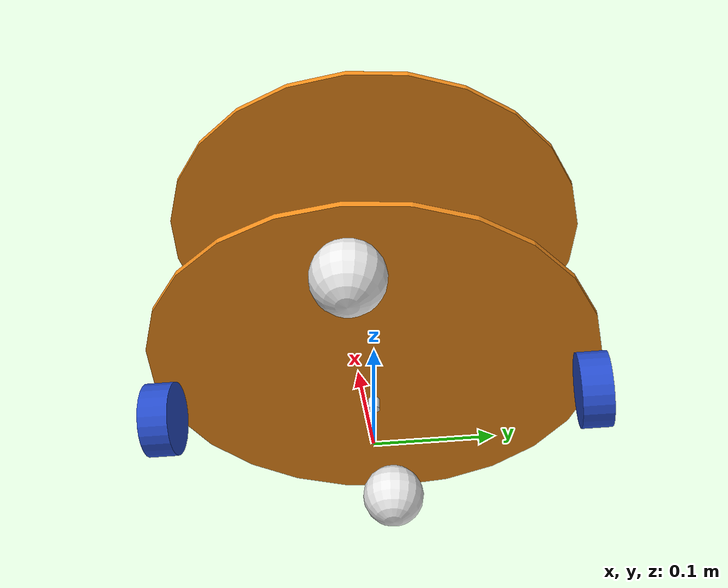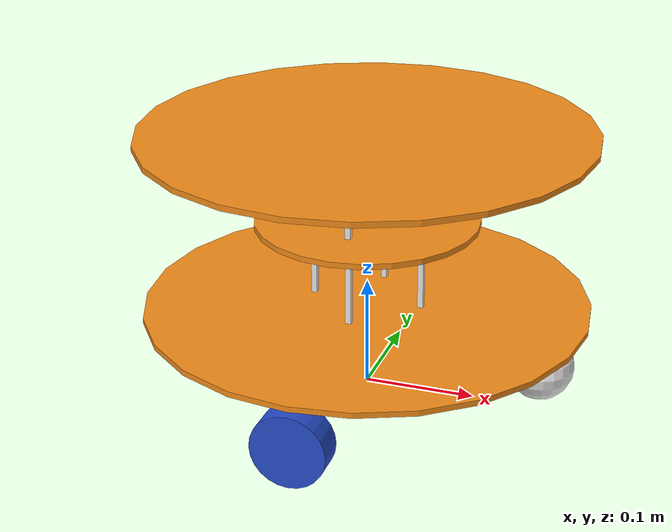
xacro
<?xml version="1.0"?>
<robot xmlns:xacro="http://www.ros.org/wiki/xacro" >

    <xacro:property name="wheel_radius" value="0.0325"/>
    <xacro:property name="wheel_thickness" value="0.026"/>
    <xacro:property name="wheel_mass" value="0.10"/>

    <xacro:property name="wheel_offset_x" value="0"/>
    <xacro:property name="wheel_offset_y" value="0.187"/>
    <xacro:property name="wheel_offset_z" value="0.04"/>

    <xacro:property name="caster_wheel_radius" value="0.030"/>
    <xacro:property name="caster_wheel_mass" value="0.05"/>
    <xacro:property name="caster_wheel_offset_x" value="0.16"/>
    <xacro:property name="caster_wheel_offset_z" value="-${wheel_offset_z - wheel_radius + caster_wheel_radius}"/>

    <!-- base link-->
    <link name="base_link">
    </link>
    <!-- base link-->

    <!-- BASE_FOOTPRINT LINK -->

    <joint name="base_footprint_joint" type="fixed">
        <parent link="base_link"/>
        <child link="base_footprint"/>
        <origin xyz="0 0 0" rpy="0 0 0"/>
    </joint>

    <link name="base_footprint">
    </link>

    <xacro:include filename="body_components/chassis.xacro" />
    <xacro:include filename="body_components/supports.xacro" />
    <xacro:include filename="body_components/wheels.xacro" />

</robot>

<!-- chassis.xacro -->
<robot xmlns:xacro="http://www.ros.org/wiki/xacro" >

    <xacro:property name="plate_radius" value="0.20"/>

    <joint name="temp_joint" type="fixed">
        <parent link="base_link"/>
        <child link="temp"/>
        <origin xyz="0 0 ${wheel_offset_z}"/>
    </joint>

    <link name="temp" >
        <visual>
            <origin xyz="0 0 0"/>
            <geometry>
                <cylinder radius="0.005" length="0.01"/>
            </geometry>
            <material name="white"/>
        </visual>

        <collision>
            <origin xyz="0 0 0"/>
            <geometry>
                <cylinder radius="0.005" length="0.0"/>
            </geometry>
        </collision>

    </link>

    <!-- BOT_PLATE LINK -->
    <joint name="bot_plate_joint" type="fixed">
        <parent link="base_link"/>
        <child link="bot_plate"/>
        <origin xyz="0 0 ${2*wheel_offset_z}"/>
    </joint>

    <link name="bot_plate">
         <visual>
            <origin xyz="0 0 0"/>
            <geometry>
                <cylinder radius="${plate_radius}" length="0.005"/>
            </geometry>
            <material name="orange"/>
        </visual>

         <collision>
            <origin xyz="0 0 0"/>
            <geometry>
                <cylinder radius="${plate_radius}" length="0.005"/>
            </geometry>
        </collision>

        <xacro:inertial_cylinder mass="0.5" radius="${plate_radius}" length="0.005">
            <origin xyz="0 0 0" rpy="0 0 0"/>
        </xacro:inertial_cylinder>
    </link>

    <gazebo reference="bot_plate">
        <material>Gazebo/Orange</material>
    </gazebo>

    <!-- BOT_PLATE LINK -->

    <!-- MID_PLATE LINK -->

    <joint name="mid_plate_joint" type="fixed">
        <parent link="bot_plate"/>
        <child link="mid_plate"/>
        <origin xyz="0 0 0.08"/>
    </joint>

    <link name="mid_plate">
         <visual>
            <origin xyz="0 0 0"/>
            <geometry>
                <cylinder radius="${0.5*plate_radius}" length="0.005"/>
            </geometry>
            <material name="orange"/>
        </visual>

         <collision>
            <origin xyz="0 0 0"/>
            <geometry>
                <cylinder radius="${0.5*plate_radius}" length="0.005"/>
            </geometry>
        </collision>

        <xacro:inertial_cylinder mass="0.1" radius="${0.5*plate_radius}" length="0.005">
            <origin xyz="0 0 0" rpy="0 0 0"/>
        </xacro:inertial_cylinder>
    </link>

    <gazebo reference="mid_plate">
        <material>Gazebo/Orange</material>
    </gazebo>

    <!-- MID_PLATE LINK -->

    <!-- TOP_PLATE LINK -->

    <joint name="top_plate_joint" type="fixed">
        <parent link="mid_plate"/>
        <child link="top_plate"/>
        <origin xyz="0 0 0.08"/>
    </joint>

    <link name="top_plate">
         <visual>
            <origin xyz="0 0 0"/>
            <geometry>
                <cylinder radius="${plate_radius}" length="0.005"/>
            </geometry>
            <material name="orange"/>
        </visual>

         <collision>
            <origin xyz="0 0 0"/>
            <geometry>
                <cylinder radius="${plate_radius}" length="0.005"/>
            </geometry>
        </collision>

        <xacro:inertial_cylinder mass="0.1" radius="${plate_radius}" length="0.005">
            <origin xyz="0 0 0" rpy="0 0 0"/>
        </xacro:inertial_cylinder>
    </link>

    <gazebo reference="top_plate">
        <material>Gazebo/Orange</material>
    </gazebo>

    <!-- TOP_PLATE LINK -->

</robot>

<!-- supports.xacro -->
<robot xmlns:xacro="http://www.ros.org/wiki/xacro" >

   <!-- BOT_MID_SUPPORTS LINK -->

    <joint name="bot_sup_1_joint" type="fixed">
        <parent link="bot_plate"/>
        <child link="bot_mid_sup_1"/>
        <origin xyz="0.05 0 0"/>
    </joint>

    <link name="bot_mid_sup_1">
        <visual>
            <origin xyz="0 0 0.04"/>
            <geometry>
                <box size="0.005 0.005 0.08"/>
            </geometry>
            <material name="white"/>
        </visual>
        <collision>
            <origin xyz="0 0 0.04"/>
            <geometry>
                <box size="0.005 0.005 0.08"/>
            </geometry>
        </collision>
        <xacro:inertial_box mass="0.02" x="0.005" y="0.005" z="0.08">
            <origin xyz="0 0 0.04" rpy="0 0 0"/>
        </xacro:inertial_box>
    </link>

    <joint name="bot_sup_2_joint" type="fixed">
        <parent link="bot_plate"/>
        <child link="bot_mid_sup_2"/>
        <origin xyz="-0.05 0 0"/>
    </joint>

    <link name="bot_mid_sup_2">
        <visual>
            <origin xyz="0 0 0.04"/>
            <geometry>
                <box size="0.005 0.005 0.08"/>
            </geometry>
            <material name="white"/>
        </visual>
        <collision>
            <origin xyz="0 0 0.04"/>
            <geometry>
                <box size="0.005 0.005 0.08"/>
            </geometry>
        </collision>
        <xacro:inertial_box mass="0.02" x="0.005" y="0.005" z="0.08">
            <origin xyz="0 0 0.04" rpy="0 0 0"/>
        </xacro:inertial_box>
    </link>

    <joint name="bot_sup_3_joint" type="fixed">
        <parent link="bot_plate"/>
        <child link="bot_mid_sup_3"/>
        <origin xyz="0 0.05 0"/>
    </joint>

    <link name="bot_mid_sup_3">
        <visual>
            <origin xyz="0 0 0.04"/>
            <geometry>
                <box size="0.005 0.005 0.08"/>
            </geometry>
            <material name="white"/>
        </visual>
        <collision>
            <origin xyz="0 0 0.04"/>
            <geometry>
                <box size="0.005 0.005 0.08"/>
            </geometry>
        </collision>
        <xacro:inertial_box mass="0.02" x="0.005" y="0.005" z="0.08">
            <origin xyz="0 0 0.04" rpy="0 0 0"/>
        </xacro:inertial_box>
    </link>

    <joint name="bot_sup_4_joint" type="fixed">
        <parent link="bot_plate"/>
        <child link="bot_mid_sup_4"/>
        <origin xyz="0 -0.05 0"/>
    </joint>

    <link name="bot_mid_sup_4">
        <visual>
            <origin xyz="0 0 0.04"/>
            <geometry>
                <box size="0.005 0.005 0.08"/>
            </geometry>
            <material name="white"/>
        </visual>
        <collision>
            <origin xyz="0 0 0.04"/>
            <geometry>
                <box size="0.005 0.005 0.08"/>
            </geometry>
        </collision>
        <xacro:inertial_box mass="0.02" x="0.005" y="0.005" z="0.08">
            <origin xyz="0 0 0.04" rpy="0 0 0"/>
        </xacro:inertial_box>
    </link>

    <!-- BOT_MID_SUPPORTS LINK -->

    <!-- MID_TOP_SUPPORTS LINK -->

    <joint name="mid_sup_1_joint" type="fixed">
        <parent link="mid_plate"/>
        <child link="mid_top_sup_1"/>
        <origin xyz="0.05 0 0"/>
    </joint>

    <link name="mid_top_sup_1">
        <visual>
            <origin xyz="0 0 0.04"/>
            <geometry>
                <box size="0.005 0.005 0.08"/>
            </geometry>
            <material name="white"/>
        </visual>
        <collision>
            <origin xyz="0 0 0.04"/>
            <geometry>
                <box size="0.005 0.005 0.08"/>
            </geometry>
        </collision>
        <xacro:inertial_box mass="0.02" x="0.005" y="0.005" z="0.08">
            <origin xyz="0 0 0.04" rpy="0 0 0"/>
        </xacro:inertial_box>
    </link>

    <joint name="mid_sup_2_joint" type="fixed">
        <parent link="mid_plate"/>
        <child link="mid_top_sup_2"/>
        <origin xyz="-0.05 0 0"/>
    </joint>

    <link name="mid_top_sup_2">
        <visual>
            <origin xyz="0 0 0.04"/>
            <geometry>
                <box size="0.005 0.005 0.08"/>
            </geometry>
            <material name="white"/>
        </visual>
        <collision>
            <origin xyz="0 0 0.04"/>
            <geometry>
                <box size="0.005 0.005 0.08"/>
            </geometry>
        </collision>
        <xacro:inertial_box mass="0.02" x="0.005" y="0.005" z="0.08">
            <origin xyz="0 0 0.04" rpy="0 0 0"/>
        </xacro:inertial_box>
    </link>

    <joint name="mid_sup_3_joint" type="fixed">
        <parent link="mid_plate"/>
        <child link="mid_top_sup_3"/>
        <origin xyz="0 0.05 0"/>
    </joint>

    <link name="mid_top_sup_3">
        <visual>
            <origin xyz="0 0 0.04"/>
            <geometry>
                <box size="0.005 0.005 0.08"/>
            </geometry>
            <material name="white"/>
        </visual>
        <collision>
            <origin xyz="0 0 0.04"/>
            <geometry>
                <box size="0.005 0.005 0.08"/>
            </geometry>
        </collision>
        <xacro:inertial_box mass="0.02" x="0.005" y="0.005" z="0.08">
            <origin xyz="0 0 0.04" rpy="0 0 0"/>
        </xacro:inertial_box>
    </link>

    <joint name="mid_sup_4_joint" type="fixed">
        <parent link="mid_plate"/>
        <child link="mid_top_sup_4"/>
        <origin xyz="0 -0.05 0"/>
    </joint>

    <link name="mid_top_sup_4">
        <visual>
            <origin xyz="0 0 0.04"/>
            <geometry>
                <box size="0.005 0.005 0.08"/>
            </geometry>
            <material name="white"/>
        </visual>
        <collision>
            <origin xyz="0 0 0.04"/>
            <geometry>
                <box size="0.005 0.005 0.08"/>
            </geometry>
        </collision>
        <xacro:inertial_box mass="0.02" x="0.005" y="0.005" z="0.08">
            <origin xyz="0 0 0.04" rpy="0 0 0"/>
        </xacro:inertial_box>
    </link>

    <!-- MID_TOP_SUPPORTS LINK -->

</robot>

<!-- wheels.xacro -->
<robot xmlns:xacro="http://www.ros.org/wiki/xacro" >

    <!-- RIGHT WHEEL LINK -->
    <joint name="right_wheel_joint" type="continuous">
        <parent link="base_link"/>
        <child link="right_wheel"/>
        <origin xyz="0 ${-wheel_offset_y} ${wheel_offset_z}" rpy="${pi/2} 0 0" />
        <axis xyz="0 0 -1"/>
    </joint>

    <link name="right_wheel">
        <visual>
            <geometry>
                <cylinder radius="${wheel_radius}" length="${wheel_thickness}"/>
            </geometry>
            <material name="blue"/>
        </visual>
        <collision>
            <geometry>
                <cylinder radius="${wheel_radius}" length="${wheel_thickness}"/>
            </geometry>
        </collision>
        <xacro:inertial_cylinder mass="${wheel_mass}" length="${wheel_thickness}" radius="${wheel_radius}">
            <origin xyz="0 0 0" rpy="0 0 0"/>
        </xacro:inertial_cylinder>
    </link>

    <gazebo reference="right_wheel">
        <material>Gazebo/Blue</material>
        <surface>
            <friction>
              <ode>
                <mu>0.33</mu>
                <mu2>0.33</mu2>
              </ode>
            </friction>
          </surface>
    </gazebo>

    <!-- RIGHT WHEEL LINK -->

    <!-- LEFT WHEEL LINK -->

     <joint name="left_wheel_joint" type="continuous">
        <parent link="base_link"/>
        <child link="left_wheel"/>
        <origin xyz="0 ${wheel_offset_y} ${wheel_offset_z}" rpy="-${pi/2} 0 0" />
        <axis xyz="0 0 1"/>
    </joint>

    <link name="left_wheel">
        <visual>
            <geometry>
                <cylinder radius="${wheel_radius}" length="${wheel_thickness}"/>
            </geometry>
            <material name="blue"/>
        </visual>
        <collision>
            <geometry>
                <cylinder radius="${wheel_radius}" length="${wheel_thickness}"/>
            </geometry>
        </collision>
        <xacro:inertial_cylinder mass="${wheel_mass}" length="${wheel_thickness}" radius="${wheel_radius}">
            <origin xyz="0 0 0" rpy="0 0 0"/>
        </xacro:inertial_cylinder>
    </link>

    <gazebo reference="left_wheel">
        <material>Gazebo/Blue</material>
        <surface>
            <friction>
              <ode>
                <mu>0.33</mu>
                <mu2>0.33</mu2>
              </ode>
            </friction>
          </surface>
    </gazebo>

   <!-- LEFT WHEEL LINK -->

    <!-- FRONT CASTER WHEEL LINK -->

    <joint name="front_caster_wheel_joint" type="fixed">
        <parent link="bot_plate"/>
        <child link="front_caster_wheel"/>
        <origin xyz="${caster_wheel_offset_x} 0 ${caster_wheel_offset_z}"/>
    </joint>

    <link name="front_caster_wheel">
        <visual>
            <geometry>
                <sphere radius="${caster_wheel_radius}"/>
            </geometry>
            <material name="white"/>
        </visual>
        <collision>
            <geometry>
                <sphere radius="${caster_wheel_radius}"/>
            </geometry>
        </collision>
        <xacro:inertial_sphere mass="${caster_wheel_mass}" radius="${caster_wheel_radius}">
            <origin xyz="0 0 0" rpy="0 0 0"/>
        </xacro:inertial_sphere>
    </link>

    <gazebo reference="front_caster_wheel">
        <material>Gazebo/Red</material>
        <mu1 value="0.1"/>
        <mu2 value="0.1"/>
    </gazebo>

    <!-- FRONT CASTER WHEEL LINK -->

    <!-- back CASTER WHEEL LINK -->

    <joint name="back_caster_wheel_joint" type="fixed">
        <parent link="bot_plate"/>
        <child link="back_caster_wheel"/>
        <origin xyz="-${caster_wheel_offset_x} 0 ${caster_wheel_offset_z}"/>
    </joint>

    <link name="back_caster_wheel">
        <visual>
            <geometry>
                <sphere radius="${caster_wheel_radius}"/>
            </geometry>
            <material name="white"/>
        </visual>
        <collision>
            <geometry>
                <sphere radius="${caster_wheel_radius}"/>
            </geometry>
        </collision>
        <xacro:inertial_sphere mass="${caster_wheel_mass}" radius="${caster_wheel_radius}">
            <origin xyz="0 0 0" rpy="0 0 0"/>
        </xacro:inertial_sphere>
    </link>

    <gazebo reference="back_caster_wheel">
        <material>Gazebo/Red</material>
        <mu1 value="0.1"/>
        <mu2 value="0.1"/>
    </gazebo>

    <!-- BACK CASTER WHEEL LINK -->

</robot>
